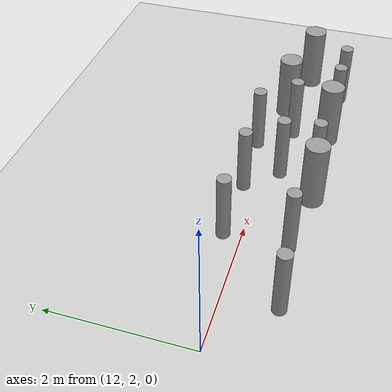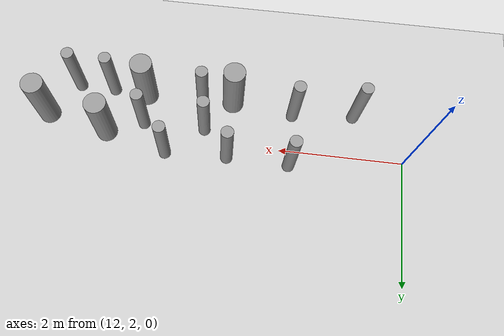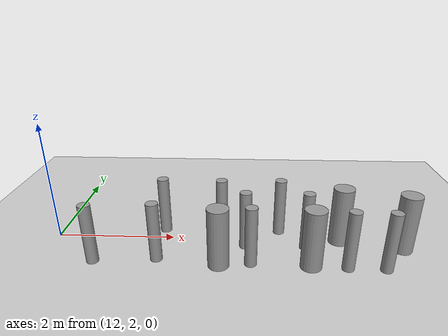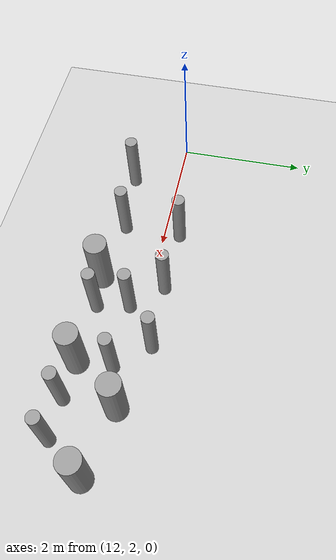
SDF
<sdf version="1.6">
 <world name="default">
  <model name="ground_plane">
   <static>1</static>
   <link name="link">
    <collision name="collision">
     <geometry><plane><normal>0 0 1</normal><size>100 100</size></plane></geometry>
     <surface><friction><ode><mu>100</mu><mu2>50</mu2></ode></friction></surface>
    </collision>
    <visual name="visual">
     <cast_shadows>0</cast_shadows>
     <geometry><plane><normal>0 0 1</normal><size>100 100</size></plane></geometry>
     <material>
      <script><uri>file://media/materials/scripts/gazebo.material</uri><name>Gazebo/Grey</name></script>
     </material>
    </visual>
   </link>
  </model>
  <model name="cyl_wall_clone_clone_1">
   <link name="link_0">
    <pose>-2.73893 -0.366465 0 0 -0 0</pose>
    <inertial>
     <mass>0.0374993</mass>
     <inertia>
      <ixx>0.00321281</ixx>
      <ixy>0</ixy>
      <ixz>0</ixz>
      <iyy>0.00321281</iyy>
      <iyz>0</iyz>
      <izz>0.000175774</izz>
     </inertia>
    </inertial>
    <visual name="visual">
     <geometry><cylinder><radius>0.0968661</radius><length>1</length></cylinder></geometry>
     <material>
      <lighting>1</lighting>
      <script><uri>file://media/materials/scripts/gazebo.material</uri><name>Gazebo/Grey</name></script>
      <ambient>0.3 0.3 0.3 1</ambient>
      <diffuse>0.7 0.7 0.7 1</diffuse>
      <specular>0.01 0.01 0.01 1</specular>
      <emissive>0 0 0 1</emissive>
     </material>
    </visual>
    <collision name="collision">
     <geometry><cylinder><radius>0.096866</radius><length>1</length></cylinder></geometry>
     <surface>
      <friction>
       <ode><mu>1</mu><mu2>1</mu2><fdir1>0 0 0</fdir1><slip1>0</slip1><slip2>0</slip2></ode>
       <torsional>
        <coefficient>1</coefficient>
        <patch_radius>0</patch_radius>
        <surface_radius>0</surface_radius>
        <use_patch_radius>1</use_patch_radius>
        <ode><slip>0</slip></ode>
       </torsional>
      </friction>
      <bounce><restitution_coefficient>0</restitution_coefficient><threshold>1e+06</threshold></bounce>
      <contact>
       <collide_without_contact>0</collide_without_contact>
       <collide_without_contact_bitmask>1</collide_without_contact_bitmask>
       <collide_bitmask>1</collide_bitmask>
       <ode>
        <soft_cfm>0</soft_cfm>
        <soft_erp>0.2</soft_erp>
        <kp>1e+13</kp>
        <kd>1</kd>
        <max_vel>0.01</max_vel>
        <min_depth>0</min_depth>
       </ode>
       <bullet>
        <split_impulse>1</split_impulse>
        <split_impulse_penetration_threshold>-0.01</split_impulse_penetration_threshold>
        <soft_cfm>0</soft_cfm>
        <soft_erp>0.2</soft_erp>
        <kp>1e+13</kp>
        <kd>1</kd>
       </bullet>
      </contact>
     </surface>
    </collision>
   </link>
   <link name="link_0_clone">
    <pose>-1.73893 0.61877 0 0 -0 0</pose>
    <inertial>
     <mass>0.0374993</mass>
     <inertia>
      <ixx>0.00321281</ixx>
      <ixy>0</ixy>
      <ixz>0</ixz>
      <iyy>0.00321281</iyy>
      <iyz>0</iyz>
      <izz>0.000175774</izz>
     </inertia>
    </inertial>
    <visual name="visual">
     <geometry><cylinder><radius>0.0968661</radius><length>1</length></cylinder></geometry>
     <material>
      <lighting>1</lighting>
      <script><uri>file://media/materials/scripts/gazebo.material</uri><name>Gazebo/Grey</name></script>
      <ambient>0.3 0.3 0.3 1</ambient>
      <diffuse>0.7 0.7 0.7 1</diffuse>
      <specular>0.01 0.01 0.01 1</specular>
      <emissive>0 0 0 1</emissive>
      <shader type="pixel"/>
     </material>
    </visual>
    <collision name="collision">
     <geometry><cylinder><radius>0.096866</radius><length>1</length></cylinder></geometry>
     <surface>
      <friction>
       <ode><mu>1</mu><mu2>1</mu2><fdir1>0 0 0</fdir1><slip1>0</slip1><slip2>0</slip2></ode>
       <torsional>
        <coefficient>1</coefficient>
        <patch_radius>0</patch_radius>
        <surface_radius>0</surface_radius>
        <use_patch_radius>1</use_patch_radius>
        <ode><slip>0</slip></ode>
       </torsional>
      </friction>
      <bounce><restitution_coefficient>0</restitution_coefficient><threshold>1e+06</threshold></bounce>
      <contact>
       <collide_without_contact>0</collide_without_contact>
       <collide_without_contact_bitmask>1</collide_without_contact_bitmask>
       <collide_bitmask>1</collide_bitmask>
       <ode>
        <soft_cfm>0</soft_cfm>
        <soft_erp>0.2</soft_erp>
        <kp>1e+13</kp>
        <kd>1</kd>
        <max_vel>0.01</max_vel>
        <min_depth>0</min_depth>
       </ode>
       <bullet>
        <split_impulse>1</split_impulse>
        <split_impulse_penetration_threshold>-0.01</split_impulse_penetration_threshold>
        <soft_cfm>0</soft_cfm>
        <soft_erp>0.2</soft_erp>
        <kp>1e+13</kp>
        <kd>1</kd>
       </bullet>
      </contact>
     </surface>
    </collision>
   </link>
   <link name="link_0_clone_clone">
    <pose>-0.327073 0.143919 0 0 -0 0</pose>
    <inertial>
     <mass>0.0374993</mass>
     <inertia>
      <ixx>0.00321281</ixx>
      <ixy>0</ixy>
      <ixz>0</ixz>
      <iyy>0.00321281</iyy>
      <iyz>0</iyz>
      <izz>0.000175774</izz>
     </inertia>
    </inertial>
    <visual name="visual">
     <geometry><cylinder><radius>0.0968661</radius><length>1</length></cylinder></geometry>
     <material>
      <lighting>1</lighting>
      <script><uri>file://media/materials/scripts/gazebo.material</uri><name>Gazebo/Grey</name></script>
      <ambient>0.3 0.3 0.3 1</ambient>
      <diffuse>0.7 0.7 0.7 1</diffuse>
      <specular>0.01 0.01 0.01 1</specular>
      <emissive>0 0 0 1</emissive>
      <shader type="pixel"/>
     </material>
    </visual>
    <collision name="collision">
     <geometry><cylinder><radius>0.096866</radius><length>1</length></cylinder></geometry>
     <surface>
      <friction>
       <ode><mu>1</mu><mu2>1</mu2><fdir1>0 0 0</fdir1><slip1>0</slip1><slip2>0</slip2></ode>
       <torsional>
        <coefficient>1</coefficient>
        <patch_radius>0</patch_radius>
        <surface_radius>0</surface_radius>
        <use_patch_radius>1</use_patch_radius>
        <ode><slip>0</slip></ode>
       </torsional>
      </friction>
      <bounce><restitution_coefficient>0</restitution_coefficient><threshold>1e+06</threshold></bounce>
      <contact>
       <collide_without_contact>0</collide_without_contact>
       <collide_without_contact_bitmask>1</collide_without_contact_bitmask>
       <collide_bitmask>1</collide_bitmask>
       <ode>
        <soft_cfm>0</soft_cfm>
        <soft_erp>0.2</soft_erp>
        <kp>1e+13</kp>
        <kd>1</kd>
        <max_vel>0.01</max_vel>
        <min_depth>0</min_depth>
       </ode>
       <bullet>
        <split_impulse>1</split_impulse>
        <split_impulse_penetration_threshold>-0.01</split_impulse_penetration_threshold>
        <soft_cfm>0</soft_cfm>
        <soft_erp>0.2</soft_erp>
        <kp>1e+13</kp>
        <kd>1</kd>
       </bullet>
      </contact>
     </surface>
    </collision>
   </link>
   <link name="link_0_clone_clone_0">
    <pose>1.26107 -0.419359 0 0 -0 0</pose>
    <inertial>
     <mass>0.0374993</mass>
     <inertia>
      <ixx>0.00321281</ixx>
      <ixy>0</ixy>
      <ixz>0</ixz>
      <iyy>0.00321281</iyy>
      <iyz>0</iyz>
      <izz>0.000175774</izz>
     </inertia>
    </inertial>
    <visual name="visual">
     <geometry><cylinder><radius>0.0968661</radius><length>1</length></cylinder></geometry>
     <material>
      <lighting>1</lighting>
      <script><uri>file://media/materials/scripts/gazebo.material</uri><name>Gazebo/Grey</name></script>
      <ambient>0.3 0.3 0.3 1</ambient>
      <diffuse>0.7 0.7 0.7 1</diffuse>
      <specular>0.01 0.01 0.01 1</specular>
      <emissive>0 0 0 1</emissive>
      <shader type="pixel"/>
     </material>
    </visual>
    <collision name="collision">
     <geometry><cylinder><radius>0.096866</radius><length>1</length></cylinder></geometry>
     <surface>
      <friction>
       <ode><mu>1</mu><mu2>1</mu2><fdir1>0 0 0</fdir1><slip1>0</slip1><slip2>0</slip2></ode>
       <torsional>
        <coefficient>1</coefficient>
        <patch_radius>0</patch_radius>
        <surface_radius>0</surface_radius>
        <use_patch_radius>1</use_patch_radius>
        <ode><slip>0</slip></ode>
       </torsional>
      </friction>
      <bounce><restitution_coefficient>0</restitution_coefficient><threshold>1e+06</threshold></bounce>
      <contact>
       <collide_without_contact>0</collide_without_contact>
       <collide_without_contact_bitmask>1</collide_without_contact_bitmask>
       <collide_bitmask>1</collide_bitmask>
       <ode>
        <soft_cfm>0</soft_cfm>
        <soft_erp>0.2</soft_erp>
        <kp>1e+13</kp>
        <kd>1</kd>
        <max_vel>0.01</max_vel>
        <min_depth>0</min_depth>
       </ode>
       <bullet>
        <split_impulse>1</split_impulse>
        <split_impulse_penetration_threshold>-0.01</split_impulse_penetration_threshold>
        <soft_cfm>0</soft_cfm>
        <soft_erp>0.2</soft_erp>
        <kp>1e+13</kp>
        <kd>1</kd>
       </bullet>
      </contact>
     </surface>
    </collision>
   </link>
   <link name="link_0_clone_clone_1">
    <pose>-1.73893 -0.277168 0 0 -0 0</pose>
    <inertial>
     <mass>0.0374993</mass>
     <inertia>
      <ixx>0.00321281</ixx>
      <ixy>0</ixy>
      <ixz>0</ixz>
      <iyy>0.00321281</iyy>
      <iyz>0</iyz>
      <izz>0.000175774</izz>
     </inertia>
    </inertial>
    <visual name="visual">
     <geometry><cylinder><radius>0.0968661</radius><length>1</length></cylinder></geometry>
     <material>
      <lighting>1</lighting>
      <script><uri>file://media/materials/scripts/gazebo.material</uri><name>Gazebo/Grey</name></script>
      <ambient>0.3 0.3 0.3 1</ambient>
      <diffuse>0.7 0.7 0.7 1</diffuse>
      <specular>0.01 0.01 0.01 1</specular>
      <emissive>0 0 0 1</emissive>
      <shader type="pixel"/>
     </material>
    </visual>
    <collision name="collision">
     <geometry><cylinder><radius>0.096866</radius><length>1</length></cylinder></geometry>
     <surface>
      <friction>
       <ode><mu>1</mu><mu2>1</mu2><fdir1>0 0 0</fdir1><slip1>0</slip1><slip2>0</slip2></ode>
       <torsional>
        <coefficient>1</coefficient>
        <patch_radius>0</patch_radius>
        <surface_radius>0</surface_radius>
        <use_patch_radius>1</use_patch_radius>
        <ode><slip>0</slip></ode>
       </torsional>
      </friction>
      <bounce><restitution_coefficient>0</restitution_coefficient><threshold>1e+06</threshold></bounce>
      <contact>
       <collide_without_contact>0</collide_without_contact>
       <collide_without_contact_bitmask>1</collide_without_contact_bitmask>
       <collide_bitmask>1</collide_bitmask>
       <ode>
        <soft_cfm>0</soft_cfm>
        <soft_erp>0.2</soft_erp>
        <kp>1e+13</kp>
        <kd>1</kd>
        <max_vel>0.01</max_vel>
        <min_depth>0</min_depth>
       </ode>
       <bullet>
        <split_impulse>1</split_impulse>
        <split_impulse_penetration_threshold>-0.01</split_impulse_penetration_threshold>
        <soft_cfm>0</soft_cfm>
        <soft_erp>0.2</soft_erp>
        <kp>1e+13</kp>
        <kd>1</kd>
       </bullet>
      </contact>
     </surface>
    </collision>
   </link>
   <link name="link_0_clone_clone_2">
    <pose>-0.738934 0.593961 0 0 -0 0</pose>
    <inertial>
     <mass>0.0374993</mass>
     <inertia>
      <ixx>0.00321281</ixx>
      <ixy>0</ixy>
      <ixz>0</ixz>
      <iyy>0.00321281</iyy>
      <iyz>0</iyz>
      <izz>0.000175774</izz>
     </inertia>
    </inertial>
    <visual name="visual">
     <geometry><cylinder><radius>0.0968661</radius><length>1</length></cylinder></geometry>
     <material>
      <lighting>1</lighting>
      <script><uri>file://media/materials/scripts/gazebo.material</uri><name>Gazebo/Grey</name></script>
      <ambient>0.3 0.3 0.3 1</ambient>
      <diffuse>0.7 0.7 0.7 1</diffuse>
      <specular>0.01 0.01 0.01 1</specular>
      <emissive>0 0 0 1</emissive>
      <shader type="pixel"/>
     </material>
    </visual>
    <collision name="collision">
     <geometry><cylinder><radius>0.096866</radius><length>1</length></cylinder></geometry>
     <surface>
      <friction>
       <ode><mu>1</mu><mu2>1</mu2><fdir1>0 0 0</fdir1><slip1>0</slip1><slip2>0</slip2></ode>
       <torsional>
        <coefficient>1</coefficient>
        <patch_radius>0</patch_radius>
        <surface_radius>0</surface_radius>
        <use_patch_radius>1</use_patch_radius>
        <ode><slip>0</slip></ode>
       </torsional>
      </friction>
      <bounce><restitution_coefficient>0</restitution_coefficient><threshold>1e+06</threshold></bounce>
      <contact>
       <collide_without_contact>0</collide_without_contact>
       <collide_without_contact_bitmask>1</collide_without_contact_bitmask>
       <collide_bitmask>1</collide_bitmask>
       <ode>
        <soft_cfm>0</soft_cfm>
        <soft_erp>0.2</soft_erp>
        <kp>1e+13</kp>
        <kd>1</kd>
        <max_vel>0.01</max_vel>
        <min_depth>0</min_depth>
       </ode>
       <bullet>
        <split_impulse>1</split_impulse>
        <split_impulse_penetration_threshold>-0.01</split_impulse_penetration_threshold>
        <soft_cfm>0</soft_cfm>
        <soft_erp>0.2</soft_erp>
        <kp>1e+13</kp>
        <kd>1</kd>
       </bullet>
      </contact>
     </surface>
    </collision>
   </link>
   <link name="link_0_clone_clone_3">
    <pose>0.261066 0.624849 0 0 -0 0</pose>
    <inertial>
     <mass>0.0374993</mass>
     <inertia>
      <ixx>0.00321281</ixx>
      <ixy>0</ixy>
      <ixz>0</ixz>
      <iyy>0.00321281</iyy>
      <iyz>0</iyz>
      <izz>0.000175774</izz>
     </inertia>
    </inertial>
    <visual name="visual">
     <geometry><cylinder><radius>0.0968661</radius><length>1</length></cylinder></geometry>
     <material>
      <lighting>1</lighting>
      <script><uri>file://media/materials/scripts/gazebo.material</uri><name>Gazebo/Grey</name></script>
      <ambient>0.3 0.3 0.3 1</ambient>
      <diffuse>0.7 0.7 0.7 1</diffuse>
      <specular>0.01 0.01 0.01 1</specular>
      <emissive>0 0 0 1</emissive>
      <shader type="pixel"/>
     </material>
    </visual>
    <collision name="collision">
     <geometry><cylinder><radius>0.096866</radius><length>1</length></cylinder></geometry>
     <surface>
      <friction>
       <ode><mu>1</mu><mu2>1</mu2><fdir1>0 0 0</fdir1><slip1>0</slip1><slip2>0</slip2></ode>
       <torsional>
        <coefficient>1</coefficient>
        <patch_radius>0</patch_radius>
        <surface_radius>0</surface_radius>
        <use_patch_radius>1</use_patch_radius>
        <ode><slip>0</slip></ode>
       </torsional>
      </friction>
      <bounce><restitution_coefficient>0</restitution_coefficient><threshold>1e+06</threshold></bounce>
      <contact>
       <collide_without_contact>0</collide_without_contact>
       <collide_without_contact_bitmask>1</collide_without_contact_bitmask>
       <collide_bitmask>1</collide_bitmask>
       <ode>
        <soft_cfm>0</soft_cfm>
        <soft_erp>0.2</soft_erp>
        <kp>1e+13</kp>
        <kd>1</kd>
        <max_vel>0.01</max_vel>
        <min_depth>0</min_depth>
       </ode>
       <bullet>
        <split_impulse>1</split_impulse>
        <split_impulse_penetration_threshold>-0.01</split_impulse_penetration_threshold>
        <soft_cfm>0</soft_cfm>
        <soft_erp>0.2</soft_erp>
        <kp>1e+13</kp>
        <kd>1</kd>
       </bullet>
      </contact>
     </surface>
    </collision>
   </link>
   <link name="link_0_clone_clone_4">
    <pose>-0.239049 -0.353105 0 0 -0 0</pose>
    <inertial>
     <mass>0.0374993</mass>
     <inertia>
      <ixx>0.00321281</ixx>
      <ixy>0</ixy>
      <ixz>0</ixz>
      <iyy>0.00321281</iyy>
      <iyz>0</iyz>
      <izz>0.000175774</izz>
     </inertia>
    </inertial>
    <visual name="visual">
     <geometry><cylinder><radius>0.0968661</radius><length>1</length></cylinder></geometry>
     <material>
      <lighting>1</lighting>
      <script><uri>file://media/materials/scripts/gazebo.material</uri><name>Gazebo/Grey</name></script>
      <ambient>0.3 0.3 0.3 1</ambient>
      <diffuse>0.7 0.7 0.7 1</diffuse>
      <specular>0.01 0.01 0.01 1</specular>
      <emissive>0 0 0 1</emissive>
      <shader type="pixel"/>
     </material>
    </visual>
    <collision name="collision">
     <geometry><cylinder><radius>0.096866</radius><length>1</length></cylinder></geometry>
     <surface>
      <friction>
       <ode><mu>1</mu><mu2>1</mu2><fdir1>0 0 0</fdir1><slip1>0</slip1><slip2>0</slip2></ode>
       <torsional>
        <coefficient>1</coefficient>
        <patch_radius>0</patch_radius>
        <surface_radius>0</surface_radius>
        <use_patch_radius>1</use_patch_radius>
        <ode><slip>0</slip></ode>
       </torsional>
      </friction>
      <bounce><restitution_coefficient>0</restitution_coefficient><threshold>1e+06</threshold></bounce>
      <contact>
       <collide_without_contact>0</collide_without_contact>
       <collide_without_contact_bitmask>1</collide_without_contact_bitmask>
       <collide_bitmask>1</collide_bitmask>
       <ode>
        <soft_cfm>0</soft_cfm>
        <soft_erp>0.2</soft_erp>
        <kp>1e+13</kp>
        <kd>1</kd>
        <max_vel>0.01</max_vel>
        <min_depth>0</min_depth>
       </ode>
       <bullet>
        <split_impulse>1</split_impulse>
        <split_impulse_penetration_threshold>-0.01</split_impulse_penetration_threshold>
        <soft_cfm>0</soft_cfm>
        <soft_erp>0.2</soft_erp>
        <kp>1e+13</kp>
        <kd>1</kd>
       </bullet>
      </contact>
     </surface>
    </collision>
   </link>
   <link name="link_0_clone_clone_5">
    <pose>0.672792 0.143919 0 0 -0 0</pose>
    <inertial>
     <mass>0.0374993</mass>
     <inertia>
      <ixx>0.00321281</ixx>
      <ixy>0</ixy>
      <ixz>0</ixz>
      <iyy>0.00321281</iyy>
      <iyz>0</iyz>
      <izz>0.000175774</izz>
     </inertia>
    </inertial>
    <visual name="visual">
     <geometry><cylinder><radius>0.0968661</radius><length>1</length></cylinder></geometry>
     <material>
      <lighting>1</lighting>
      <script><uri>file://media/materials/scripts/gazebo.material</uri><name>Gazebo/Grey</name></script>
      <ambient>0.3 0.3 0.3 1</ambient>
      <diffuse>0.7 0.7 0.7 1</diffuse>
      <specular>0.01 0.01 0.01 1</specular>
      <emissive>0 0 0 1</emissive>
      <shader type="pixel"/>
     </material>
    </visual>
    <collision name="collision">
     <geometry><cylinder><radius>0.096866</radius><length>1</length></cylinder></geometry>
     <surface>
      <friction>
       <ode><mu>1</mu><mu2>1</mu2><fdir1>0 0 0</fdir1><slip1>0</slip1><slip2>0</slip2></ode>
       <torsional>
        <coefficient>1</coefficient>
        <patch_radius>0</patch_radius>
        <surface_radius>0</surface_radius>
        <use_patch_radius>1</use_patch_radius>
        <ode><slip>0</slip></ode>
       </torsional>
      </friction>
      <bounce><restitution_coefficient>0</restitution_coefficient><threshold>1e+06</threshold></bounce>
      <contact>
       <collide_without_contact>0</collide_without_contact>
       <collide_without_contact_bitmask>1</collide_without_contact_bitmask>
       <collide_bitmask>1</collide_bitmask>
       <ode>
        <soft_cfm>0</soft_cfm>
        <soft_erp>0.2</soft_erp>
        <kp>1e+13</kp>
        <kd>1</kd>
        <max_vel>0.01</max_vel>
        <min_depth>0</min_depth>
       </ode>
       <bullet>
        <split_impulse>1</split_impulse>
        <split_impulse_penetration_threshold>-0.01</split_impulse_penetration_threshold>
        <soft_cfm>0</soft_cfm>
        <soft_erp>0.2</soft_erp>
        <kp>1e+13</kp>
        <kd>1</kd>
       </bullet>
      </contact>
     </surface>
    </collision>
   </link>
   <link name="link_0_clone_clone_6">
    <pose>1.84596 -0.433423 0 0 -0 0</pose>
    <inertial>
     <mass>0.0374993</mass>
     <inertia>
      <ixx>0.00321281</ixx>
      <ixy>0</ixy>
      <ixz>0</ixz>
      <iyy>0.00321281</iyy>
      <iyz>0</iyz>
      <izz>0.000175774</izz>
     </inertia>
    </inertial>
    <visual name="visual">
     <geometry><cylinder><radius>0.0968661</radius><length>1</length></cylinder></geometry>
     <material>
      <lighting>1</lighting>
      <script><uri>file://media/materials/scripts/gazebo.material</uri><name>Gazebo/Grey</name></script>
      <ambient>0.3 0.3 0.3 1</ambient>
      <diffuse>0.7 0.7 0.7 1</diffuse>
      <specular>0.01 0.01 0.01 1</specular>
      <emissive>0 0 0 1</emissive>
      <shader type="pixel"/>
     </material>
    </visual>
    <collision name="collision">
     <geometry><cylinder><radius>0.096866</radius><length>1</length></cylinder></geometry>
     <surface>
      <friction>
       <ode><mu>1</mu><mu2>1</mu2><fdir1>0 0 0</fdir1><slip1>0</slip1><slip2>0</slip2></ode>
       <torsional>
        <coefficient>1</coefficient>
        <patch_radius>0</patch_radius>
        <surface_radius>0</surface_radius>
        <use_patch_radius>1</use_patch_radius>
        <ode><slip>0</slip></ode>
       </torsional>
      </friction>
      <bounce><restitution_coefficient>0</restitution_coefficient><threshold>1e+06</threshold></bounce>
      <contact>
       <collide_without_contact>0</collide_without_contact>
       <collide_without_contact_bitmask>1</collide_without_contact_bitmask>
       <collide_bitmask>1</collide_bitmask>
       <ode>
        <soft_cfm>0</soft_cfm>
        <soft_erp>0.2</soft_erp>
        <kp>1e+13</kp>
        <kd>1</kd>
        <max_vel>0.01</max_vel>
        <min_depth>0</min_depth>
       </ode>
       <bullet>
        <split_impulse>1</split_impulse>
        <split_impulse_penetration_threshold>-0.01</split_impulse_penetration_threshold>
        <soft_cfm>0</soft_cfm>
        <soft_erp>0.2</soft_erp>
        <kp>1e+13</kp>
        <kd>1</kd>
       </bullet>
      </contact>
     </surface>
    </collision>
   </link>
   <link name="link_1">
    <pose>-0.738934 -0.397931 0 0 -0 0</pose>
    <inertial>
     <mass>0.117398</mass>
     <inertia>
      <ixx>0.0106445</ixx>
      <ixy>0</ixy>
      <ixz>0</ixz>
      <iyy>0.0106445</iyy>
      <iyz>0</iyz>
      <izz>0.00172278</izz>
     </inertia>
    </inertial>
    <visual name="visual">
     <geometry><cylinder><radius>0.171317</radius><length>1</length></cylinder></geometry>
     <material>
      <lighting>1</lighting>
      <script><uri>file://media/materials/scripts/gazebo.material</uri><name>Gazebo/Grey</name></script>
      <ambient>0.3 0.3 0.3 1</ambient>
      <diffuse>0.7 0.7 0.7 1</diffuse>
      <specular>0.01 0.01 0.01 1</specular>
      <emissive>0 0 0 1</emissive>
     </material>
    </visual>
    <collision name="collision">
     <geometry><cylinder><radius>0.171317</radius><length>1</length></cylinder></geometry>
     <surface>
      <friction>
       <ode><mu>1</mu><mu2>1</mu2><fdir1>0 0 0</fdir1><slip1>0</slip1><slip2>0</slip2></ode>
       <torsional>
        <coefficient>1</coefficient>
        <patch_radius>0</patch_radius>
        <surface_radius>0</surface_radius>
        <use_patch_radius>1</use_patch_radius>
        <ode><slip>0</slip></ode>
       </torsional>
      </friction>
      <bounce><restitution_coefficient>0</restitution_coefficient><threshold>1e+06</threshold></bounce>
      <contact>
       <collide_without_contact>0</collide_without_contact>
       <collide_without_contact_bitmask>1</collide_without_contact_bitmask>
       <collide_bitmask>1</collide_bitmask>
       <ode>
        <soft_cfm>0</soft_cfm>
        <soft_erp>0.2</soft_erp>
        <kp>1e+13</kp>
        <kd>1</kd>
        <max_vel>0.01</max_vel>
        <min_depth>0</min_depth>
       </ode>
       <bullet>
        <split_impulse>1</split_impulse>
        <split_impulse_penetration_threshold>-0.01</split_impulse_penetration_threshold>
        <soft_cfm>0</soft_cfm>
        <soft_erp>0.2</soft_erp>
        <kp>1e+13</kp>
        <kd>1</kd>
       </bullet>
      </contact>
     </surface>
    </collision>
   </link>
   <link name="link_1_clone">
    <pose>0.697784 -0.380861 0 0 -0 0</pose>
    <inertial>
     <mass>0.117398</mass>
     <inertia>
      <ixx>0.0106445</ixx>
      <ixy>0</ixy>
      <ixz>0</ixz>
      <iyy>0.0106445</iyy>
      <iyz>0</iyz>
      <izz>0.00172278</izz>
     </inertia>
    </inertial>
    <visual name="visual">
     <geometry><cylinder><radius>0.171317</radius><length>1</length></cylinder></geometry>
     <material>
      <lighting>1</lighting>
      <script><uri>file://media/materials/scripts/gazebo.material</uri><name>Gazebo/Grey</name></script>
      <ambient>0.3 0.3 0.3 1</ambient>
      <diffuse>0.7 0.7 0.7 1</diffuse>
      <specular>0.01 0.01 0.01 1</specular>
      <emissive>0 0 0 1</emissive>
      <shader type="pixel"/>
     </material>
    </visual>
    <collision name="collision">
     <geometry><cylinder><radius>0.171317</radius><length>1</length></cylinder></geometry>
     <surface>
      <friction>
       <ode><mu>1</mu><mu2>1</mu2><fdir1>0 0 0</fdir1><slip1>0</slip1><slip2>0</slip2></ode>
       <torsional>
        <coefficient>1</coefficient>
        <patch_radius>0</patch_radius>
        <surface_radius>0</surface_radius>
        <use_patch_radius>1</use_patch_radius>
        <ode><slip>0</slip></ode>
       </torsional>
      </friction>
      <bounce><restitution_coefficient>0</restitution_coefficient><threshold>1e+06</threshold></bounce>
      <contact>
       <collide_without_contact>0</collide_without_contact>
       <collide_without_contact_bitmask>1</collide_without_contact_bitmask>
       <collide_bitmask>1</collide_bitmask>
       <ode>
        <soft_cfm>0</soft_cfm>
        <soft_erp>0.2</soft_erp>
        <kp>1e+13</kp>
        <kd>1</kd>
        <max_vel>0.01</max_vel>
        <min_depth>0</min_depth>
       </ode>
       <bullet>
        <split_impulse>1</split_impulse>
        <split_impulse_penetration_threshold>-0.01</split_impulse_penetration_threshold>
        <soft_cfm>0</soft_cfm>
        <soft_erp>0.2</soft_erp>
        <kp>1e+13</kp>
        <kd>1</kd>
       </bullet>
      </contact>
     </surface>
    </collision>
   </link>
   <link name="link_1_clone_0">
    <pose>1.26107 0.358974 0 0 -0 0</pose>
    <inertial>
     <mass>0.117398</mass>
     <inertia>
      <ixx>0.0106445</ixx>
      <ixy>0</ixy>
      <ixz>0</ixz>
      <iyy>0.0106445</iyy>
      <iyz>0</iyz>
      <izz>0.00172278</izz>
     </inertia>
    </inertial>
    <visual name="visual">
     <geometry><cylinder><radius>0.171317</radius><length>1</length></cylinder></geometry>
     <material>
      <lighting>1</lighting>
      <script><uri>file://media/materials/scripts/gazebo.material</uri><name>Gazebo/Grey</name></script>
      <ambient>0.3 0.3 0.3 1</ambient>
      <diffuse>0.7 0.7 0.7 1</diffuse>
      <specular>0.01 0.01 0.01 1</specular>
      <emissive>0 0 0 1</emissive>
      <shader type="pixel"/>
     </material>
    </visual>
    <collision name="collision">
     <geometry><cylinder><radius>0.171317</radius><length>1</length></cylinder></geometry>
     <surface>
      <friction>
       <ode><mu>1</mu><mu2>1</mu2><fdir1>0 0 0</fdir1><slip1>0</slip1><slip2>0</slip2></ode>
       <torsional>
        <coefficient>1</coefficient>
        <patch_radius>0</patch_radius>
        <surface_radius>0</surface_radius>
        <use_patch_radius>1</use_patch_radius>
        <ode><slip>0</slip></ode>
       </torsional>
      </friction>
      <bounce><restitution_coefficient>0</restitution_coefficient><threshold>1e+06</threshold></bounce>
      <contact>
       <collide_without_contact>0</collide_without_contact>
       <collide_without_contact_bitmask>1</collide_without_contact_bitmask>
       <collide_bitmask>1</collide_bitmask>
       <ode>
        <soft_cfm>0</soft_cfm>
        <soft_erp>0.2</soft_erp>
        <kp>1e+13</kp>
        <kd>1</kd>
        <max_vel>0.01</max_vel>
        <min_depth>0</min_depth>
       </ode>
       <bullet>
        <split_impulse>1</split_impulse>
        <split_impulse_penetration_threshold>-0.01</split_impulse_penetration_threshold>
        <soft_cfm>0</soft_cfm>
        <soft_erp>0.2</soft_erp>
        <kp>1e+13</kp>
        <kd>1</kd>
       </bullet>
      </contact>
     </surface>
    </collision>
   </link>
   <link name="link_1_clone_1">
    <pose>2.26107 0.143919 0 0 -0 0</pose>
    <inertial>
     <mass>0.117398</mass>
     <inertia>
      <ixx>0.0106445</ixx>
      <ixy>0</ixy>
      <ixz>0</ixz>
      <iyy>0.0106445</iyy>
      <iyz>0</iyz>
      <izz>0.00172278</izz>
     </inertia>
    </inertial>
    <visual name="visual">
     <geometry><cylinder><radius>0.171317</radius><length>1</length></cylinder></geometry>
     <material>
      <lighting>1</lighting>
      <script><uri>file://media/materials/scripts/gazebo.material</uri><name>Gazebo/Grey</name></script>
      <ambient>0.3 0.3 0.3 1</ambient>
      <diffuse>0.7 0.7 0.7 1</diffuse>
      <specular>0.01 0.01 0.01 1</specular>
      <emissive>0 0 0 1</emissive>
      <shader type="pixel"/>
     </material>
    </visual>
    <collision name="collision">
     <geometry><cylinder><radius>0.171317</radius><length>1</length></cylinder></geometry>
     <surface>
      <friction>
       <ode><mu>1</mu><mu2>1</mu2><fdir1>0 0 0</fdir1><slip1>0</slip1><slip2>0</slip2></ode>
       <torsional>
        <coefficient>1</coefficient>
        <patch_radius>0</patch_radius>
        <surface_radius>0</surface_radius>
        <use_patch_radius>1</use_patch_radius>
        <ode><slip>0</slip></ode>
       </torsional>
      </friction>
      <bounce><restitution_coefficient>0</restitution_coefficient><threshold>1e+06</threshold></bounce>
      <contact>
       <collide_without_contact>0</collide_without_contact>
       <collide_without_contact_bitmask>1</collide_without_contact_bitmask>
       <collide_bitmask>1</collide_bitmask>
       <ode>
        <soft_cfm>0</soft_cfm>
        <soft_erp>0.2</soft_erp>
        <kp>1e+13</kp>
        <kd>1</kd>
        <max_vel>0.01</max_vel>
        <min_depth>0</min_depth>
       </ode>
       <bullet>
        <split_impulse>1</split_impulse>
        <split_impulse_penetration_threshold>-0.01</split_impulse_penetration_threshold>
        <soft_cfm>0</soft_cfm>
        <soft_erp>0.2</soft_erp>
        <kp>1e+13</kp>
        <kd>1</kd>
       </bullet>
      </contact>
     </surface>
    </collision>
   </link>
   <static>1</static>
   <pose>15.57 1.63495 0.5 0 -0 0</pose>
  </model>
 </world>
</sdf>
